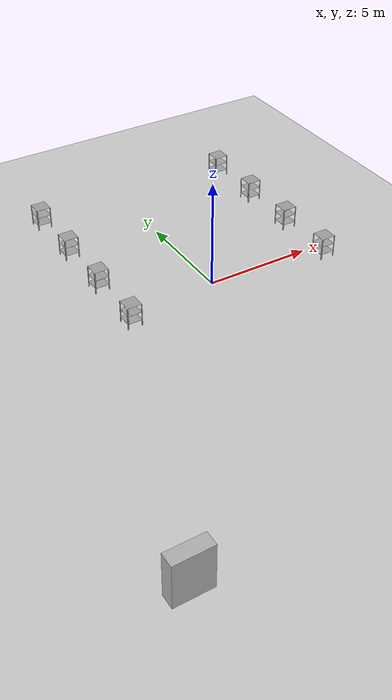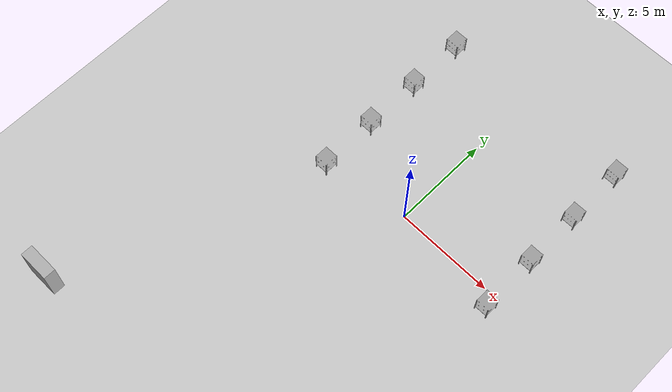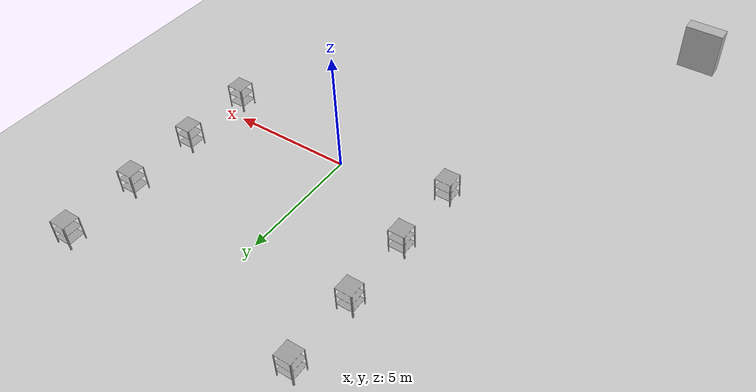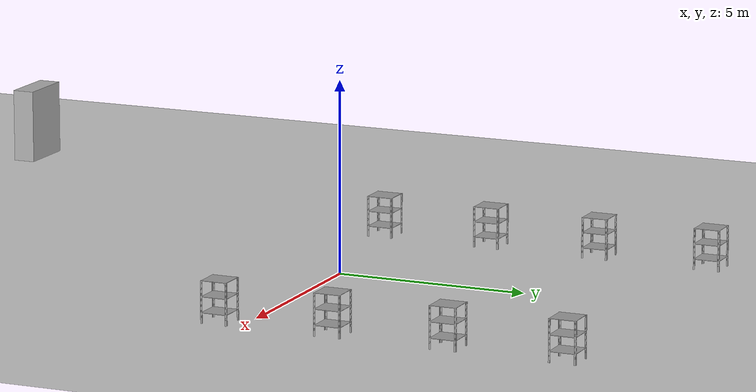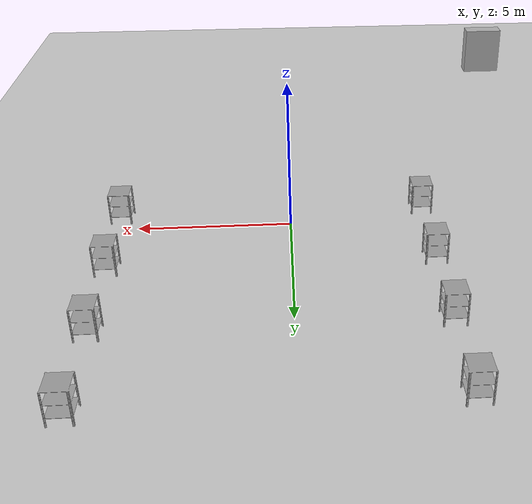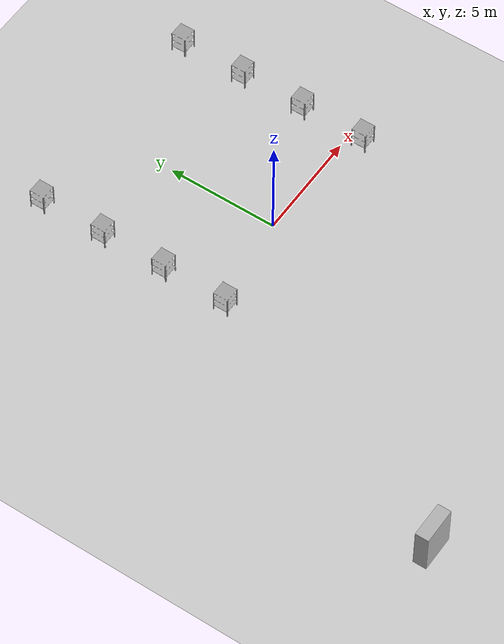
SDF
<?xml version="1.0" encoding="UTF-8"?>
<sdf version="1.9">
  <world name="warehouse">
    <physics type="ode">
      <max_step_size>0.004</max_step_size>
      <real_time_factor>1.0</real_time_factor>
      <real_time_update_rate>250</real_time_update_rate>
    </physics>
    <plugin name="gz::sim::systems::Physics" filename="gz-sim-physics-system"/>
    <plugin name="gz::sim::systems::UserCommands" filename="gz-sim-user-commands-system"/>
    <plugin name="gz::sim::systems::SceneBroadcaster" filename="gz-sim-scene-broadcaster-system"/>
    <plugin name="gz::sim::systems::Contact" filename="gz-sim-contact-system"/>
    <plugin name="gz::sim::systems::Imu" filename="gz-sim-imu-system"/>
    <plugin name="gz::sim::systems::AirPressure" filename="gz-sim-air-pressure-system"/>
    <plugin name="gz::sim::systems::ApplyLinkWrench" filename="gz-sim-apply-link-wrench-system"/>
    <plugin name="gz::sim::systems::NavSat" filename="gz-sim-navsat-system"/>
    <plugin name="gz::sim::systems::Sensors" filename="gz-sim-sensors-system">
      <render_engine>ogre2</render_engine>
    </plugin>
    <gui fullscreen="false">
      <!-- 3D scene -->
      <plugin filename="MinimalScene" name="3D View">
        <gz-gui>
          <title>3D View</title>
          <property type="bool" key="showTitleBar">false</property>
          <property type="string" key="state">docked</property>
        </gz-gui>
        <engine>ogre2</engine>
        <scene>scene</scene>
        <ambient_light>0.4 0.4 0.4</ambient_light>
        <background_color>0.8 0.8 0.8</background_color>
        <camera_pose>-6 0 6 0 0.5 0</camera_pose>
        <camera_clip>
          <near>0.25</near>
          <far>25000</far>
        </camera_clip>
      </plugin>
      <!-- Plugins that add functionality to the scene -->
      <plugin filename="EntityContextMenuPlugin" name="Entity context menu">
        <gz-gui>
          <property key="state" type="string">floating</property>
          <property key="width" type="double">5</property>
          <property key="height" type="double">5</property>
          <property key="showTitleBar" type="bool">false</property>
        </gz-gui>
      </plugin>
      <plugin filename="GzSceneManager" name="Scene Manager">
        <gz-gui>
          <property key="resizable" type="bool">false</property>
          <property key="width" type="double">5</property>
          <property key="height" type="double">5</property>
          <property key="state" type="string">floating</property>
          <property key="showTitleBar" type="bool">false</property>
        </gz-gui>
      </plugin>
      <plugin filename="InteractiveViewControl" name="Interactive view control">
        <gz-gui>
          <property key="resizable" type="bool">false</property>
          <property key="width" type="double">5</property>
          <property key="height" type="double">5</property>
          <property key="state" type="string">floating</property>
          <property key="showTitleBar" type="bool">false</property>
        </gz-gui>
      </plugin>
      <plugin filename="CameraTracking" name="Camera Tracking">
        <gz-gui>
          <property key="resizable" type="bool">false</property>
          <property key="width" type="double">5</property>
          <property key="height" type="double">5</property>
          <property key="state" type="string">floating</property>
          <property key="showTitleBar" type="bool">false</property>
        </gz-gui>
      </plugin>
      <plugin filename="MarkerManager" name="Marker manager">
        <gz-gui>
          <property key="resizable" type="bool">false</property>
          <property key="width" type="double">5</property>
          <property key="height" type="double">5</property>
          <property key="state" type="string">floating</property>
          <property key="showTitleBar" type="bool">false</property>
        </gz-gui>
      </plugin>
      <plugin filename="SelectEntities" name="Select Entities">
        <gz-gui>
          <anchors target="Select entities">
            <line own="right" target="right"/>
            <line own="top" target="top"/>
          </anchors>
          <property key="resizable" type="bool">false</property>
          <property key="width" type="double">5</property>
          <property key="height" type="double">5</property>
          <property key="state" type="string">floating</property>
          <property key="showTitleBar" type="bool">false</property>
        </gz-gui>
      </plugin>
      <plugin filename="VisualizationCapabilities" name="Visualization Capabilities">
        <gz-gui>
          <property key="resizable" type="bool">false</property>
          <property key="width" type="double">5</property>
          <property key="height" type="double">5</property>
          <property key="state" type="string">floating</property>
          <property key="showTitleBar" type="bool">false</property>
        </gz-gui>
      </plugin>
      <plugin filename="Spawn" name="Spawn Entities">
        <gz-gui>
          <anchors target="Select entities">
            <line own="right" target="right"/>
            <line own="top" target="top"/>
          </anchors>
          <property key="resizable" type="bool">false</property>
          <property key="width" type="double">5</property>
          <property key="height" type="double">5</property>
          <property key="state" type="string">floating</property>
          <property key="showTitleBar" type="bool">false</property>
        </gz-gui>
      </plugin>
      <plugin name="World control" filename="WorldControl">
        <gz-gui>
          <title>World control</title>
          <property type="bool" key="showTitleBar">0</property>
          <property type="bool" key="resizable">0</property>
          <property type="double" key="height">72</property>
          <property type="double" key="width">121</property>
          <property type="double" key="z">1</property>
          <property type="string" key="state">floating</property>
          <anchors target="3D View">
            <line own="left" target="left"/>
            <line own="bottom" target="bottom"/>
          </anchors>
        </gz-gui>
        <play_pause>1</play_pause>
        <step>1</step>
        <start_paused>1</start_paused>
      </plugin>
      <plugin name="World stats" filename="WorldStats">
        <gz-gui>
          <title>World stats</title>
          <property type="bool" key="showTitleBar">0</property>
          <property type="bool" key="resizable">0</property>
          <property type="double" key="height">110</property>
          <property type="double" key="width">290</property>
          <property type="double" key="z">1</property>
          <property type="string" key="state">floating</property>
          <anchors target="3D View">
            <line own="right" target="right"/>
            <line own="bottom" target="bottom"/>
          </anchors>
        </gz-gui>
        <sim_time>1</sim_time>
        <real_time>1</real_time>
        <real_time_factor>1</real_time_factor>
        <iterations>1</iterations>
      </plugin>
      <plugin name="Entity tree" filename="EntityTree"/>
    </gui>
    <gravity>0 0 -9.8</gravity>
    <magnetic_field>6e-06 2.3e-05 -4.2e-05</magnetic_field>
    <atmosphere type="adiabatic"/>
    <scene>
      <grid>false</grid>
      <ambient>0.4 0.4 0.4 1</ambient>
      <background>0.7 0.7 0.7 1</background>
      <shadows>true</shadows>
    </scene>
    <model name="ground_plane">
      <static>true</static>
      <link name="link">
        <collision name="collision">
          <geometry>
            <plane>
              <normal>0 0 1</normal>
              <size>1 1</size>
            </plane>
          </geometry>
          <surface>
            <friction>
              <ode/>
            </friction>
            <bounce/>
            <contact/>
          </surface>
        </collision>
        <visual name="visual">
          <geometry>
            <plane>
              <normal>0 0 1</normal>
              <size>100 100</size>
            </plane>
          </geometry>
          <material>
            <ambient>0.8 0.8 0.8 1</ambient>
            <diffuse>0.8 0.8 0.8 1</diffuse>
            <specular>0.8 0.8 0.8 1</specular>
          </material>
        </visual>
        <pose>0 0 0 0 -0 0</pose>
        <inertial>
          <pose>0 0 0 0 -0 0</pose>
          <mass>1</mass>
          <inertia>
            <ixx>1</ixx>
            <ixy>0</ixy>
            <ixz>0</ixz>
            <iyy>1</iyy>
            <iyz>0</iyz>
            <izz>1</izz>
          </inertia>
        </inertial>
        <enable_wind>false</enable_wind>
      </link>
      <pose>0 0 0 0 -0 0</pose>
      <self_collide>false</self_collide>
    </model>
    <light name="sunUTC" type="directional">
      <pose>0 0 500 0 -0 0</pose>
      <cast_shadows>true</cast_shadows>
      <intensity>1</intensity>
      <direction>0.001 0.625 -0.78</direction>
      <diffuse>0.904 0.904 0.904 1</diffuse>
      <specular>0.271 0.271 0.271 1</specular>
      <attenuation>
        <range>2000</range>
        <linear>0</linear>
        <constant>1</constant>
        <quadratic>0</quadratic>
      </attenuation>
      <spot>
        <inner_angle>0</inner_angle>
        <outer_angle>0</outer_angle>
        <falloff>0</falloff>
      </spot>
    </light>
    <spherical_coordinates>
      <surface_model>EARTH_WGS84</surface_model>
      <world_frame_orientation>ENU</world_frame_orientation>
      <latitude_deg>47.397971057728974</latitude_deg>
      <longitude_deg> 8.546163739800146</longitude_deg>
      <elevation>0</elevation>
    </spherical_coordinates>

    <!-- Base -->
    <include>
      <uri>
        model://warehouse
      </uri>
      <name>warehouse</name>
      <pose>0 0 -0.09 0 0 0</pose>
    </include>

    <!-- Objects -->
    <include>
      <uri>
        model://shelf_big
      </uri>
      <name>shelf_big_0</name>
      <pose>-9.34177 -13.5598 0 0 -0 0</pose>
    </include>
    <include>
      <uri>
        model://shelf
      </uri>
      <name>shelf</name>
      <pose>-4.41528 -0.690987 0 0 -0 0</pose>
    </include>
    <include>
      <uri>
        model://shelf
      </uri>
      <name>shelf_0</name>
      <pose>-4.41528 2.30697 0 0 -0 0</pose>
    </include>
    <include>
      <uri>
        model://shelf
      </uri>
      <name>shelf_1</name>
      <pose>-4.41528 5.30708 0 0 -0 0</pose>
    </include>
    <include>
      <uri>
        model://shelf
      </uri>
      <name>shelf_2</name>
      <pose>-4.41528 8.34352 0 0 -0 0</pose>
    </include>
    <include>
      <uri>
        model://shelf
      </uri>
      <name>shelf_3</name>
      <pose>5.60144 8.34352 0 0 -0 0</pose>
    </include>
    <include>
      <uri>
        model://shelf
      </uri>
      <name>shelf_4</name>
      <pose>5.60144 5.30708 0 0 -0 0</pose>
    </include>
    <include>
      <uri>
        model://shelf
      </uri>
      <name>shelf_5</name>
      <pose>5.60144 -0.690987 0 0 -0 0</pose>
    </include>
    <include>
      <uri>
        model://shelf
      </uri>
      <name>shelf_6</name>
      <pose>5.60144 2.30697 0 0 -0 0</pose>
    </include>
  </world>
</sdf>

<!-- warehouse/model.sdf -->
<sdf version="1.5">
  <model name="warehouse">
    <static>true</static>

    <link name="link">
      <collision name="collision">
        <geometry>
          <mesh>
            <uri>model://warehouse/meshes/warehouse.dae</uri>
            <scale>1 1 1</scale>
          </mesh>
        </geometry>
      </collision>
      <visual name="visual">
        <geometry>
          <mesh>
            <uri>model://warehouse/meshes/warehouse.dae</uri>
            <scale>1 1 1</scale>
          </mesh>
        </geometry>
      </visual>
    </link>
  </model>
</sdf>

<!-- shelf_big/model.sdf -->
<sdf version="1.7">
  <model name="shelf_big">
    <static>true</static>
    <link name="link">
      <pose>0 0 1.0 0 0 0</pose>
      <visual name="visual">
        <geometry>
          <box>
            <size>1.6 0.6 2.0</size>
          </box>
        </geometry>
        <material>
          <ambient>0.7 0.7 0.7 1</ambient>
          <diffuse>0.7 0.7 0.7 1</diffuse>
        </material>
      </visual>
      <collision name="collision">
        <geometry>
          <box>
            <size>1.6 0.6 2.0</size>
          </box>
        </geometry>
      </collision>
    </link>
  </model>
</sdf>

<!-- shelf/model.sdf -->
<sdf version='1.6'>
  <model name='shelf'>
    <link name='link'>
      <inertial>
        <mass>0.1</mass>
        <inertia>
          <ixx>1</ixx>
          <ixy>0.00</ixy>
          <ixz>0.00</ixz>
          <iyy>1</iyy>
          <iyz>0.00</iyz>
          <izz>1</izz>
        </inertia>
      </inertial>
      <pose frame=''>0 0 0 0 -0 0</pose>
      <visual name='visual'>
        <pose frame=''>0 0 0 0 -0 0</pose>
        <geometry>
          <mesh>
            <uri>model://shelf/meshes/shelf.dae</uri>
            <scale>1 1 1</scale>
          </mesh>
        </geometry>
        <transparency>0</transparency>
        <cast_shadows>1</cast_shadows>
      </visual>
      <collision name='collision'>
        <laser_retro>0</laser_retro>
        <max_contacts>10</max_contacts>
        <pose frame=''>0 0 0 0 -0 0</pose>
        <geometry>
          <mesh>
            <uri>model://shelf/meshes/shelf.dae</uri>
            <scale>1 1 1</scale>
          </mesh>
        </geometry>
        <surface>
          <friction>
            <ode>
              <mu>1</mu>
              <mu2>1</mu2>
              <fdir1>0 0 0</fdir1>
              <slip1>0</slip1>
              <slip2>0</slip2>
            </ode>
            <torsional>
              <coefficient>1</coefficient>
              <patch_radius>1</patch_radius>
              <surface_radius>1</surface_radius>
              <use_patch_radius>1</use_patch_radius>
              <ode>
                <slip>0</slip>
              </ode>
            </torsional>
          </friction>
          <bounce>
            <restitution_coefficient>1</restitution_coefficient>
            <threshold>1e+06</threshold>
          </bounce>
          <contact>
            <collide_without_contact>0</collide_without_contact>
            <collide_without_contact_bitmask>1</collide_without_contact_bitmask>
            <collide_bitmask>1</collide_bitmask>
            <ode>
              <soft_cfm>0</soft_cfm>
              <soft_erp>0.2</soft_erp>
              <kp>1e+13</kp>
              <kd>1</kd>
              <max_vel>0.01</max_vel>
              <min_depth>0</min_depth>
            </ode>
            <bullet>
              <split_impulse>1</split_impulse>
              <split_impulse_penetration_threshold>-0.01</split_impulse_penetration_threshold>
              <soft_cfm>0</soft_cfm>
              <soft_erp>0.2</soft_erp>
              <kp>1e+13</kp>
              <kd>1</kd>
            </bullet>
          </contact>
        </surface>
      </collision>
    </link>
    <static>0</static>
    <allow_auto_disable>1</allow_auto_disable>
  </model>
</sdf>
